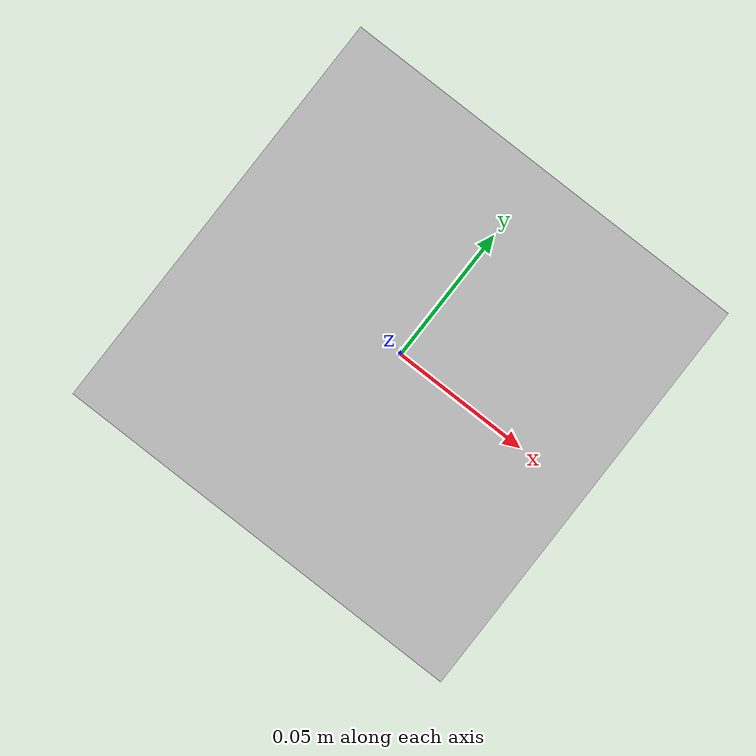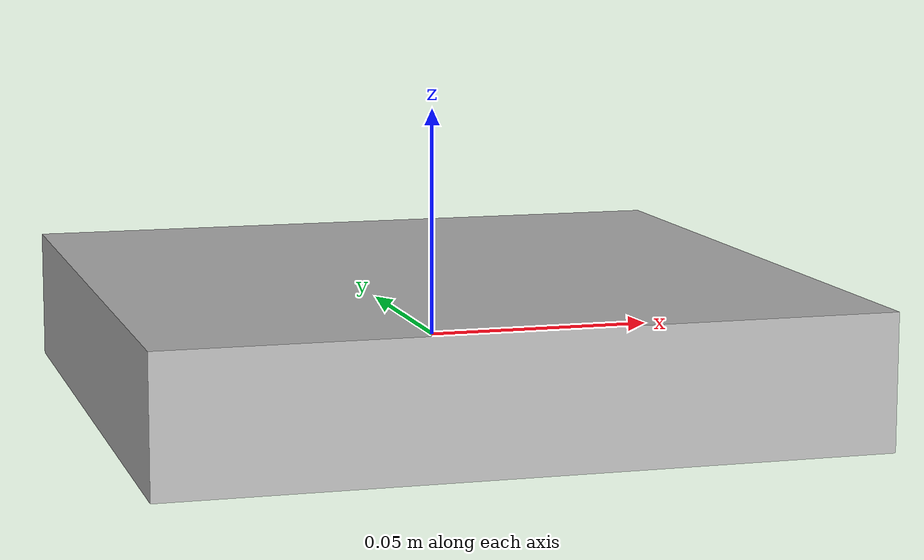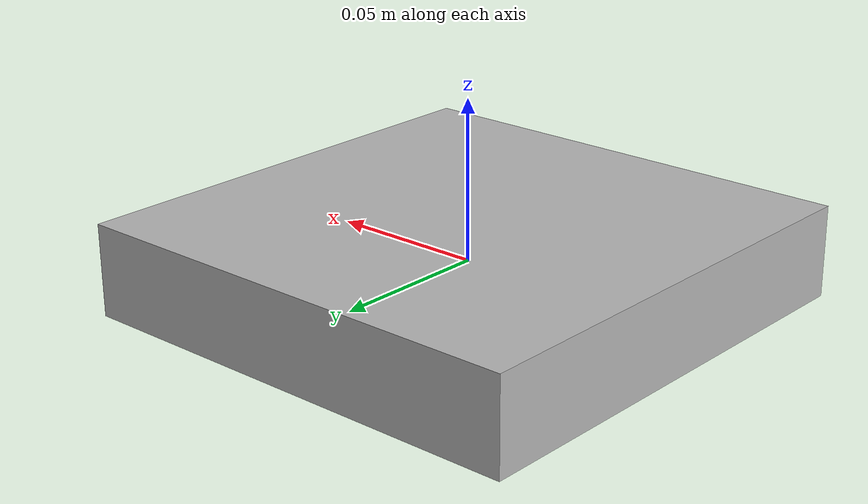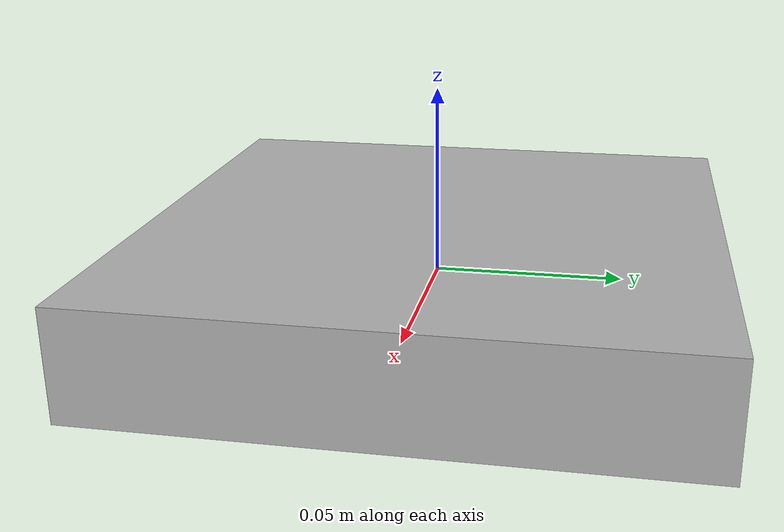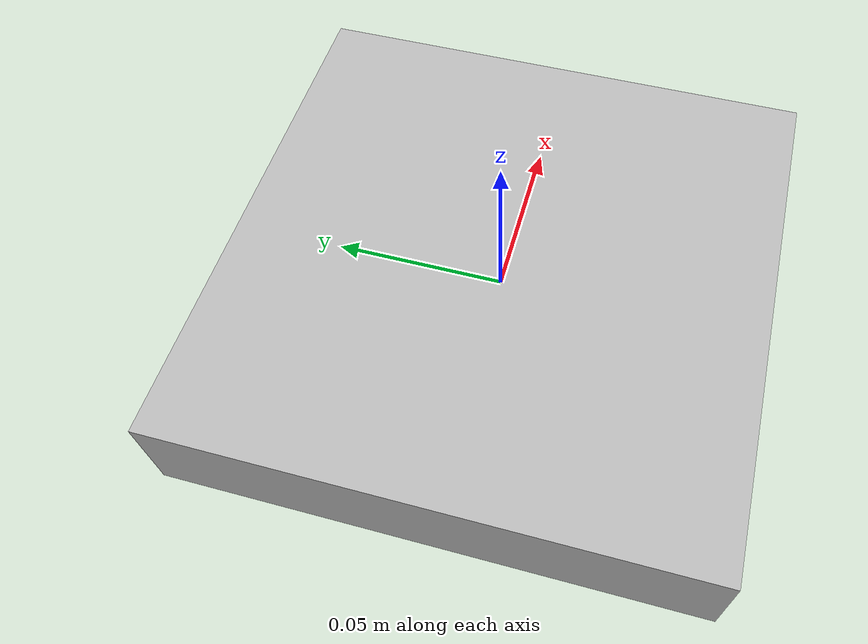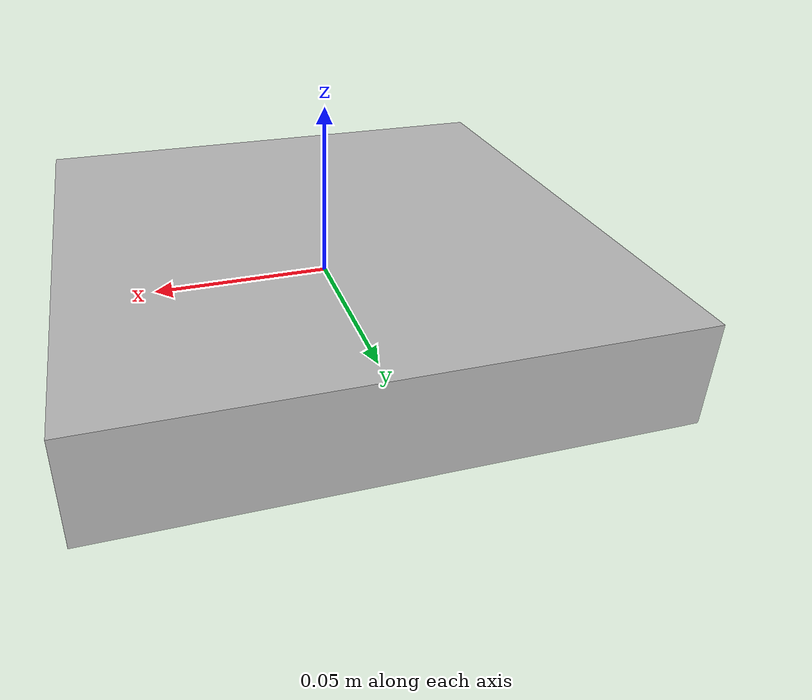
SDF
<?xml version="1.0"?>
<sdf version="1.6">
  <model name="amti_he6x6_force_plate">
    <pose>0 0 0 0 0 0</pose>
    <static>false</static>
    <link name="mount">
      <gravity>false</gravity>
      <inertial>
        <mass>1000.0</mass>
        <inertia>
          <ixx>1.0</ixx><iyy>1.0</iyy><izz>1.0</izz>
          <ixy>0.0</ixy><ixz>0.0</ixz><iyz>0.0</iyz>
        </inertia>
      </inertial>
    </link>
    <link name="body">
      <inertial>
        <mass>0.73</mass>
        <inertia>
          <ixx>1e-6</ixx><iyy>1e-6</iyy><izz>1e-6</izz>
          <ixy>0.0</ixy><ixz>0.0</ixz><iyz>0.0</iyz>
        </inertia>
      </inertial>
      <collision name="tactile_collision">
        <geometry>
          <box>
            <size>0.152 0.152 0.029</size>
          </box>
        </geometry>
      </collision>
      <!-- Bounding size for test framework -->
      <sensor_size>0.152 0.152 0.029</sensor_size>
      <visual name="visual">
        <geometry>
          <box>
            <size>0.152 0.152 0.029</size>
          </box>
        </geometry>
      </visual>
      <sensor name="tactile_bumper" type="contact">
        <always_on>1</always_on>
        <update_rate>50.0</update_rate>
        <contact>
          <collision>tactile_collision</collision>
        </contact>
        <plugin name="tactile_bumper_plugin" filename="libgazebo_ros_bumper.so">
          <robotNamespace>/amti_he6x6_force_plate</robotNamespace>
          <topicName>bumper_states</topicName>
          <frameName>body</frameName>
        </plugin>
      </sensor>
    </link>
    <joint name="ft_joint" type="fixed">
      <parent>mount</parent>
      <child>body</child>
      <sensor name="ft_sensor" type="force_torque">
        <always_on>true</always_on>
        <update_rate>1000</update_rate>
        <visualize>false</visualize>
        <force_torque>
          <frame>child</frame>
          <measure_direction>child_to_parent</measure_direction>
        </force_torque>
      </sensor>
    </joint>
  </model>
</sdf>
